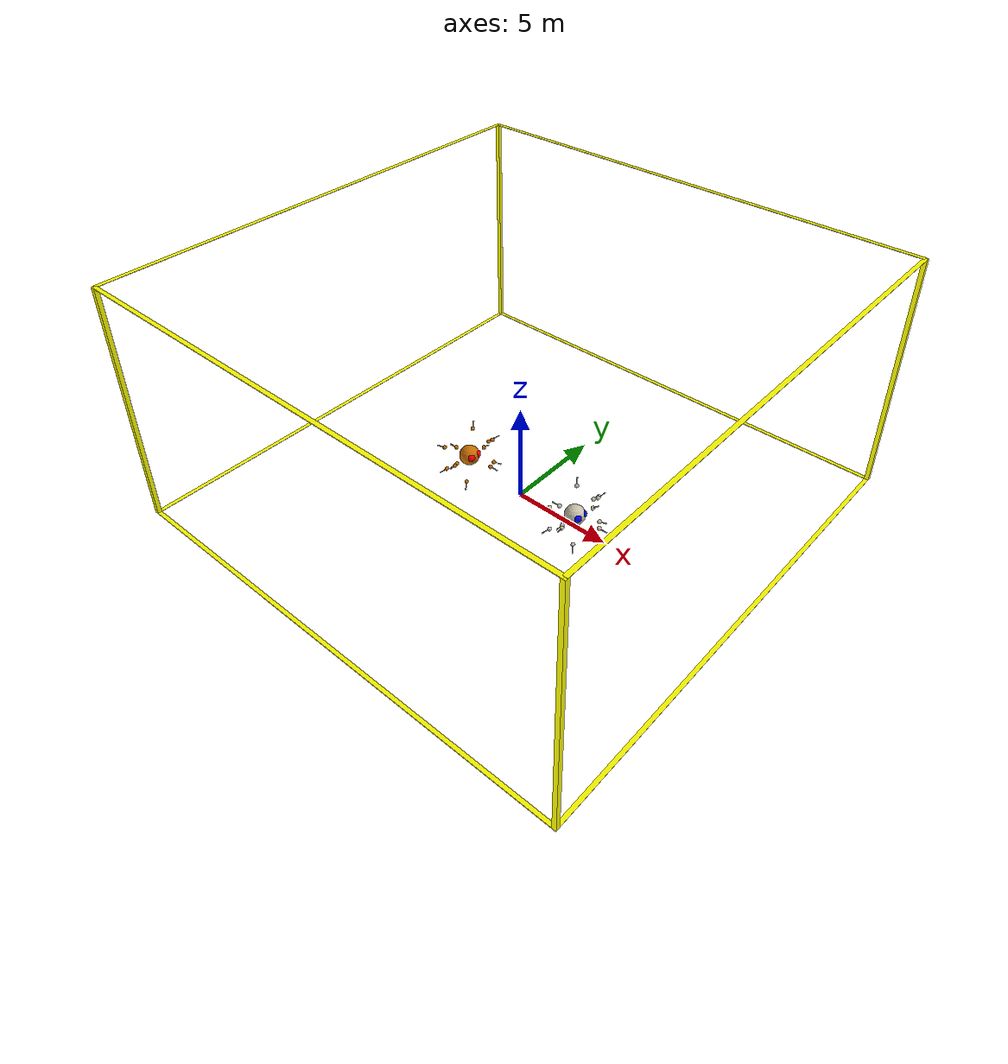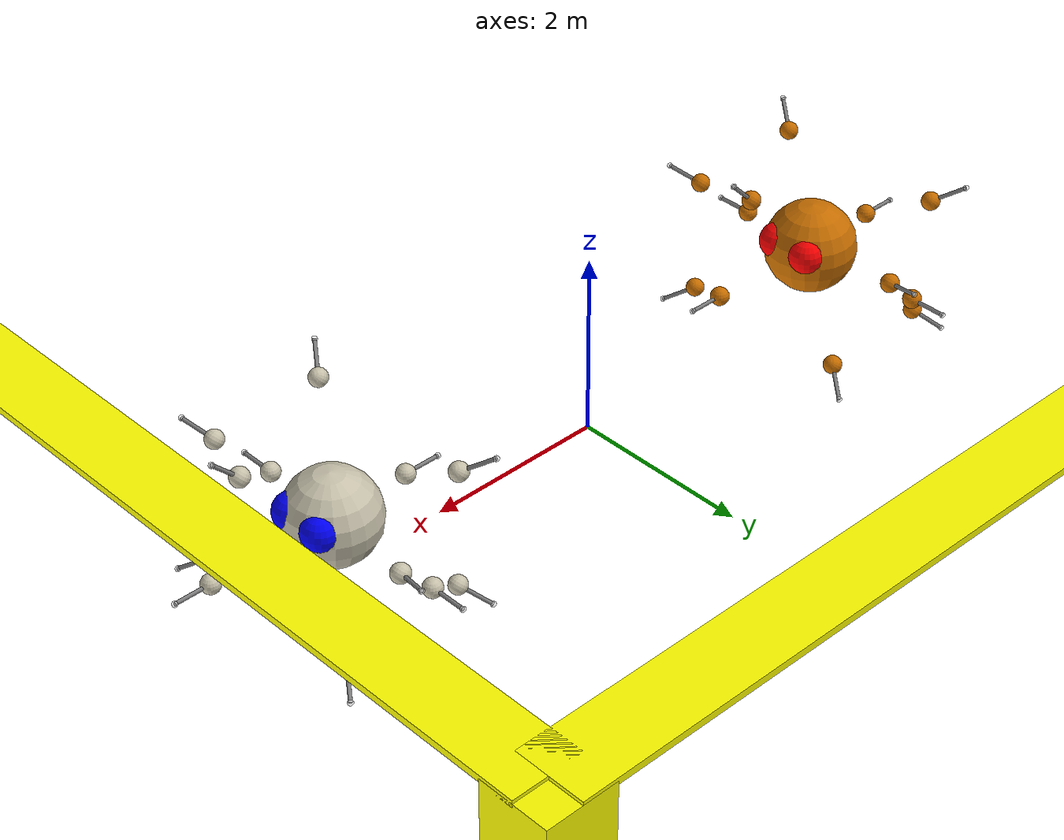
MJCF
<mujoco>
      <option timestep="0.001" gravity="0 0 -9.8" integrator="RK4" />

      <visual>
            <headlight ambient="0.4 0.3 0.1" diffuse="0.8 0.7 0.5" specular="0.3 0.3 0.3" />
            <rgba fog="0.3 0.22 0.05 1" />
            <quality shadowsize="4096" />
      </visual>

      <statistic extent="10" meansize="0.5" />

      <default>
            <geom friction="1.8 0.1 0.1" solref="0.01 1" solimp="0.9 0.95 0.001" />
            <joint damping="0.8" armature="0.5" />
            <motor gear="450" />
      </default>

      <asset>
            <texture name="grid_tex" type="2d" builtin="checker" width="512" height="512"
                  rgb1="0.1 0.1 0.2" rgb2="0.15 0.15 0.3" />

            <material name="grid_material"
                  texture="grid_tex"
                  texrepeat="10 10"
                  specular="0.2"
                  shininess="0.1"
                  rgba="0.1 0.06 0.04 0" />

            <material name="wall_material"
                  specular="0.5"
                  shininess="0.1"
                  rgba="0.18 0.09 0.06 0" />

            <material name="safety_wall_material" rgba="1 0 0 0" /> <!-- Invisible -->

            <material name="roof_material"
                  specular="0.3"
                  shininess="0.2"
                  rgba="0.2 0.2 0.3 0" />

            <texture name="robot1_tex" type="cube" builtin="flat" width="512" height="512"
                  mark="random" markrgb="1.0 0.2 0.2" />
            <texture name="robot2_tex" type="cube" builtin="flat" width="512" height="512"
                  mark="random" markrgb="0.2 0.2 1.0" />
            <material name="robot1_body_mat" texture="robot1_tex" specular="0.8" shininess="0.9"
                  rgba="1.0 0.55 0.0 1" />
            <material name="robot2_body_mat" texture="robot2_tex" specular="0.8" shininess="0.9"
                  rgba="1.0 0.97 0.86 1" />

            <material name="spike_mat" specular="1.0" shininess="1.0" rgba="0.5 0.5 0.5 1" />
            <material name="yellow_outline" rgba="1 1 0 1" specular="1" shininess="1" emission="1.0" />

            <!-- LED Eye Materials (emissive for glow effect) -->
            <material name="led_eye_red" rgba="1 0 0 1" emission="2.0" specular="0.3" shininess="0.5"/>
            <material name="led_eye_blue" rgba="0 0 1 1" emission="2.0" specular="0.3" shininess="0.5"/>
            <material name="led_eye_green" rgba="0 1 0 1" emission="2.0" specular="0.3" shininess="0.5"/>
            <material name="eye_pupil" rgba="0 0 0 1" emission="0.0" specular="0.1"/>
      </asset>

      <worldbody>
            <light name="main_light" pos="0 0 15" dir="0 0 -1" diffuse="0.9 0.9 1.0"
                  specular="0.5 0.5 0.8" />
            <geom name="floor" type="plane" size="50 50 0.1"
                  material="grid_material"
                  condim="3"
                  friction="1 0.005 0.005" />

            <!-- Thick Outer Arena Walls -->
            <geom name="wall_n" type="box" pos="0 15.0 6.0" size="12.5 2.5 6.0" material="wall_material" />
            <geom name="wall_s" type="box" pos="0 -15.0 6.0" size="12.5 2.5 6.0" material="wall_material" />
            <geom name="wall_e" type="box" pos="15.0 0 6.0" size="2.5 12.5 6.0" material="wall_material" />
            <geom name="wall_w" type="box" pos="-15.0 0 6.0" size="2.5 12.5 6.0" material="wall_material" />
            <geom name="roof" type="box" pos="0 0 12.1" size="17.6 17.6 0.1" material="roof_material" />

            <!-- Rounded Corner Walls -->
            <geom name="corner_ne" type="cylinder" fromto="12.5 12.5 0 12.5 12.5 12" size="2.5" material="wall_material" />
            <geom name="corner_nw" type="cylinder" fromto="-12.5 12.5 0 -12.5 12.5 12" size="2.5" material="wall_material" />
            <geom name="corner_se" type="cylinder" fromto="12.5 -12.5 0 12.5 -12.5 12" size="2.5" material="wall_material" />
            <geom name="corner_sw" type="cylinder" fromto="-12.5 -12.5 0 -12.5 -12.5 12" size="2.5" material="wall_material" />

            <!-- Yellow Arena Outline -->
            <geom name="outline_n_floor" type="box" pos="0 12.0 0.01" size="12.0 0.1 0.01" material="yellow_outline" contype="0" conaffinity="0" />
            <geom name="outline_s_floor" type="box" pos="0 -12.0 0.01" size="12.0 0.1 0.01" material="yellow_outline" contype="0" conaffinity="0" />
            <geom name="outline_e_floor" type="box" pos="12.0 0 0.01" size="0.1 12.0 0.01" material="yellow_outline" contype="0" conaffinity="0" />
            <geom name="outline_w_floor" type="box" pos="-12.0 0 0.01" size="0.1 12.0 0.01" material="yellow_outline" contype="0" conaffinity="0" />
            <!-- Ceiling -->
            <geom name="outline_n_ceil" type="box" pos="0 12.0 12.0" size="12.0 0.1 0.01" material="yellow_outline" contype="0" conaffinity="0" />
            <geom name="outline_s_ceil" type="box" pos="0 -12.0 12.0" size="12.0 0.1 0.01" material="yellow_outline" contype="0" conaffinity="0" />
            <geom name="outline_e_ceil" type="box" pos="12.0 0 12.0" size="0.1 12.0 0.01" material="yellow_outline" contype="0" conaffinity="0" />
            <geom name="outline_w_ceil" type="box" pos="-12.0 0 12.0" size="0.1 12.0 0.01" material="yellow_outline" contype="0" conaffinity="0" />
            <!-- Vertical Pillars -->
            <geom name="outline_ne_pillar" type="box" pos="12.0 12.0 6.0" size="0.1 0.1 6.0" material="yellow_outline" contype="0" conaffinity="0" />
            <geom name="outline_nw_pillar" type="box" pos="-12.0 12.0 6.0" size="0.1 0.1 6.0" material="yellow_outline" contype="0" conaffinity="0" />
            <geom name="outline_se_pillar" type="box" pos="12.0 -12.0 6.0" size="0.1 0.1 6.0" material="yellow_outline" contype="0" conaffinity="0" />
            <geom name="outline_sw_pillar" type="box" pos="-12.0 -12.0 6.0" size="0.1 0.1 6.0" material="yellow_outline" contype="0" conaffinity="0" />

            <!-- Robot 1 (Bright Red) -->
            <body name="robot1" pos="-3.3 0 0.7">
                  <freejoint name="r1_root" />
                  <geom name="r1_body" type="sphere" size="0.5"
                        material="robot1_body_mat"
                        mass="13" />
                  <site name="r1_center" pos="0 0 0" size="0.01" rgba="1 0 0 1"/>
                  <site name="r1_ray_fwd_site" pos="0 0 0" size="0.01" euler="0 0 0"/>
                  <site name="r1_ray_fwd_l_site" pos="0 0 0" size="0.01" euler="0 0 22.5"/>
                  <site name="r1_ray_fwd_r_site" pos="0 0 0" size="0.01" euler="0 0 -22.5"/>
                  <site name="r1_ray_45_l_site" pos="0 0 0" size="0.01" euler="0 0 45"/>
                  <site name="r1_ray_45_r_site" pos="0 0 0" size="0.01" euler="0 0 -45"/>
                  <site name="r1_ray_90_l_site" pos="0 0 0" size="0.01" euler="0 0 90"/>
                  <site name="r1_ray_90_r_site" pos="0 0 0" size="0.01" euler="0 0 -90"/>
                  <site name="r1_ray_back_site" pos="0 0 0" size="0.01" euler="0 0 180"/>
                  <site name="r1_ray_down_site" pos="0 0 0" size="0.01" euler="0 -90 0"/>
                  <site name="r1_ray_up_site" pos="0 0 0" size="0.01" euler="0 90 0"/>

                  <!-- Satellites R1 -->
                  <body name="r1_s1" pos="0 0 0">
                        <joint name="r1_s1y" type="hinge" axis="0 0 1" />
                        <joint name="r1_s1p" type="hinge" axis="0 1 0" />
                        <joint name="r1_s1r" type="hinge" axis="1 0 0" />
                        <geom name="r1_sat1_core" type="sphere" pos="1.4 0 0" size="0.1" material="robot1_body_mat" mass="3.5" />
                        <body name="r1_s1_lancer" pos="1.4 0 0">
                            <joint name="r1_s1_slide" type="slide" axis="1 0 0" range="0 0.5"/>
                            <geom name="r1_sat1_spike" type="cylinder" fromto="0 0 0 0.4 0 0" size="0.02" material="spike_mat" mass="0.5" />
                            <site name="r1_s1_site" pos="0.4 0 0" size="0.03" rgba="1 1 1 0.5" />
                        </body>
                  </body>
                  <body name="r1_s2" pos="0 0 0">
                        <joint name="r1_s2y" type="hinge" axis="0 0 1" />
                        <joint name="r1_s2p" type="hinge" axis="0 1 0" />
                        <joint name="r1_s2r" type="hinge" axis="1 0 0" />
                        <geom name="r1_sat2_core" type="sphere" pos="-0.9 0 0" size="0.1" material="robot1_body_mat" mass="3.5" />
                        <body name="r1_s2_lancer" pos="-0.9 0 0">
                            <joint name="r1_s2_slide" type="slide" axis="-1 0 0" range="0 0.5"/>
                            <geom name="r1_sat2_spike" type="cylinder" fromto="0 0 0 -0.4 0 0" size="0.02" material="spike_mat" mass="0.5" />
                            <site name="r1_s2_site" pos="-0.4 0 0" size="0.03" rgba="1 1 1 0.5" />
                        </body>
                  </body>
                  <body name="r1_s3" pos="0 0 0">
                        <joint name="r1_s3y" type="hinge" axis="0 0 1" />
                        <joint name="r1_s3p" type="hinge" axis="1 0 0" />
                        <joint name="r1_s3r" type="hinge" axis="0 1 0" />
                        <geom name="r1_sat3_core" type="sphere" pos="0 1.4 0" size="0.1" material="robot1_body_mat" mass="3.5" />
                        <body name="r1_s3_lancer" pos="0 1.4 0">
                            <joint name="r1_s3_slide" type="slide" axis="0 1 0" range="0 0.5"/>
                            <geom name="r1_sat3_spike" type="cylinder" fromto="0 0 0 0 0.4 0" size="0.02" material="spike_mat" mass="0.5" />
                            <site name="r1_s3_site" pos="0 0.4 0" size="0.03" rgba="1 1 1 0.5" />
                        </body>
                  </body>
                  <body name="r1_s4" pos="0 0 0">
                        <joint name="r1_s4y" type="hinge" axis="0 0 1" />
                        <joint name="r1_s4p" type="hinge" axis="1 0 0" />
                        <joint name="r1_s4r" type="hinge" axis="0 1 0" />
                        <geom name="r1_sat4_core" type="sphere" pos="0 -0.9 0" size="0.1" material="robot1_body_mat" mass="3.5" />
                        <body name="r1_s4_lancer" pos="0 -0.9 0">
                            <joint name="r1_s4_slide" type="slide" axis="0 -1 0" range="0 0.5"/>
                            <geom name="r1_sat4_spike" type="cylinder" fromto="0 0 0 0 -0.4 0" size="0.02" material="spike_mat" mass="0.5" />
                            <site name="r1_s4_site" pos="0 -0.4 0" size="0.03" rgba="1 1 1 0.5" />
                        </body>
                  </body>
                  <!-- New Satellites s5-s13 -->
                  <body name="r1_s5" pos="0 0 0" euler="0 -45 0">
                      <joint name="r1_s5y" type="hinge" axis="0 0 1"/><joint name="r1_s5p" type="hinge" axis="0 1 0"/><joint name="r1_s5r" type="hinge" axis="1 0 0"/>
                      <geom name="r1_sat5_core" type="sphere" pos="1.4 0 0" size="0.1" material="robot1_body_mat" mass="3.5"/>
                      <body name="r1_s5_lancer" pos="1.4 0 0"><joint name="r1_s5_slide" type="slide" axis="1 0 0" range="0 0.5"/><geom name="r1_sat5_spike" type="cylinder" fromto="0 0 0 0.4 0 0" size="0.02" material="spike_mat" mass="0.5"/><site name="r1_s5_site" pos="0.4 0 0" size="0.03" rgba="1 1 1 0.5"/></body>
                  </body>
                  <body name="r1_s6" pos="0 0 0" euler="0 -45 72">
                      <joint name="r1_s6y" type="hinge" axis="0 0 1"/><joint name="r1_s6p" type="hinge" axis="0 1 0"/><joint name="r1_s6r" type="hinge" axis="1 0 0"/>
                      <geom name="r1_sat6_core" type="sphere" pos="1.4 0 0" size="0.1" material="robot1_body_mat" mass="3.5"/>
                      <body name="r1_s6_lancer" pos="1.4 0 0"><joint name="r1_s6_slide" type="slide" axis="1 0 0" range="0 0.5"/><geom name="r1_sat6_spike" type="cylinder" fromto="0 0 0 0.4 0 0" size="0.02" material="spike_mat" mass="0.5"/><site name="r1_s6_site" pos="0.4 0 0" size="0.03" rgba="1 1 1 0.5"/></body>
                  </body>
                  <body name="r1_s7" pos="0 0 0" euler="0 -45 144">
                      <joint name="r1_s7y" type="hinge" axis="0 0 1"/><joint name="r1_s7p" type="hinge" axis="0 1 0"/><joint name="r1_s7r" type="hinge" axis="1 0 0"/>
                      <geom name="r1_sat7_core" type="sphere" pos="1.4 0 0" size="0.1" material="robot1_body_mat" mass="3.5"/>
                      <body name="r1_s7_lancer" pos="1.4 0 0"><joint name="r1_s7_slide" type="slide" axis="1 0 0" range="0 0.5"/><geom name="r1_sat7_spike" type="cylinder" fromto="0 0 0 0.4 0 0" size="0.02" material="spike_mat" mass="0.5"/><site name="r1_s7_site" pos="0.4 0 0" size="0.03" rgba="1 1 1 0.5"/></body>
                  </body>
                  <body name="r1_s8" pos="0 0 0" euler="0 -45 216">
                      <joint name="r1_s8y" type="hinge" axis="0 0 1"/><joint name="r1_s8p" type="hinge" axis="0 1 0"/><joint name="r1_s8r" type="hinge" axis="1 0 0"/>
                      <geom name="r1_sat8_core" type="sphere" pos="1.4 0 0" size="0.1" material="robot1_body_mat" mass="3.5"/>
                      <body name="r1_s8_lancer" pos="1.4 0 0"><joint name="r1_s8_slide" type="slide" axis="1 0 0" range="0 0.5"/><geom name="r1_sat8_spike" type="cylinder" fromto="0 0 0 0.4 0 0" size="0.02" material="spike_mat" mass="0.5"/><site name="r1_s8_site" pos="0.4 0 0" size="0.03" rgba="1 1 1 0.5"/></body>
                  </body>
                  <body name="r1_s9" pos="0 0 0" euler="0 -45 288">
                      <joint name="r1_s9y" type="hinge" axis="0 0 1"/><joint name="r1_s9p" type="hinge" axis="0 1 0"/><joint name="r1_s9r" type="hinge" axis="1 0 0"/>
                      <geom name="r1_sat9_core" type="sphere" pos="1.4 0 0" size="0.1" material="robot1_body_mat" mass="3.5"/>
                      <body name="r1_s9_lancer" pos="1.4 0 0"><joint name="r1_s9_slide" type="slide" axis="1 0 0" range="0 0.5"/><geom name="r1_sat9_spike" type="cylinder" fromto="0 0 0 0.4 0 0" size="0.02" material="spike_mat" mass="0.5"/><site name="r1_s9_site" pos="0.4 0 0" size="0.03" rgba="1 1 1 0.5"/></body>
                  </body>
                  <body name="r1_s10" pos="0 0 0" euler="0 45 45">
                      <joint name="r1_s10y" type="hinge" axis="0 0 1"/><joint name="r1_s10p" type="hinge" axis="0 1 0"/><joint name="r1_s10r" type="hinge" axis="1 0 0"/>
                      <geom name="r1_sat10_core" type="sphere" pos="1.4 0 0" size="0.1" material="robot1_body_mat" mass="3.5"/>
                      <body name="r1_s10_lancer" pos="1.4 0 0"><joint name="r1_s10_slide" type="slide" axis="1 0 0" range="0 0.5"/><geom name="r1_sat10_spike" type="cylinder" fromto="0 0 0 0.4 0 0" size="0.02" material="spike_mat" mass="0.5"/><site name="r1_s10_site" pos="0.4 0 0" size="0.03" rgba="1 1 1 0.5"/></body>
                  </body>
                  <body name="r1_s11" pos="0 0 0" euler="0 45 135">
                      <joint name="r1_s11y" type="hinge" axis="0 0 1"/><joint name="r1_s11p" type="hinge" axis="0 1 0"/><joint name="r1_s11r" type="hinge" axis="1 0 0"/>
                      <geom name="r1_sat11_core" type="sphere" pos="1.4 0 0" size="0.1" material="robot1_body_mat" mass="3.5"/>
                      <body name="r1_s11_lancer" pos="1.4 0 0"><joint name="r1_s11_slide" type="slide" axis="1 0 0" range="0 0.5"/><geom name="r1_sat11_spike" type="cylinder" fromto="0 0 0 0.4 0 0" size="0.02" material="spike_mat" mass="0.5"/><site name="r1_s11_site" pos="0.4 0 0" size="0.03" rgba="1 1 1 0.5"/></body>
                  </body>
                  <body name="r1_s12" pos="0 0 0" euler="0 45 225">
                      <joint name="r1_s12y" type="hinge" axis="0 0 1"/><joint name="r1_s12p" type="hinge" axis="0 1 0"/><joint name="r1_s12r" type="hinge" axis="1 0 0"/>
                      <geom name="r1_sat12_core" type="sphere" pos="1.4 0 0" size="0.1" material="robot1_body_mat" mass="3.5"/>
                      <body name="r1_s12_lancer" pos="1.4 0 0"><joint name="r1_s12_slide" type="slide" axis="1 0 0" range="0 0.5"/><geom name="r1_sat12_spike" type="cylinder" fromto="0 0 0 0.4 0 0" size="0.02" material="spike_mat" mass="0.5"/><site name="r1_s12_site" pos="0.4 0 0" size="0.03" rgba="1 1 1 0.5"/></body>
                  </body>
                  <body name="r1_s13" pos="0 0 0" euler="0 45 315">
                      <joint name="r1_s13y" type="hinge" axis="0 0 1"/><joint name="r1_s13p" type="hinge" axis="0 1 0"/><joint name="r1_s13r" type="hinge" axis="1 0 0"/>
                      <geom name="r1_sat13_core" type="sphere" pos="1.4 0 0" size="0.1" material="robot1_body_mat" mass="3.5"/>
                      <body name="r1_s13_lancer" pos="1.4 0 0"><joint name="r1_s13_slide" type="slide" axis="1 0 0" range="0 0.5"/><geom name="r1_sat13_spike" type="cylinder" fromto="0 0 0 0.4 0 0" size="0.02" material="spike_mat" mass="0.5"/><site name="r1_s13_site" pos="0.4 0 0" size="0.03" rgba="1 1 1 0.5"/></body>
                  </body>

                  <!-- LED Eye Assemblies for Robot 1 -->
                  <!-- Left Eye Assembly -->
                  <body name="r1_eye_left_base" pos="0.3 0.2 0.1">
                        <joint name="r1_eye_yaw_left" type="hinge" axis="0 0 1" range="-45 45"/>
                        <joint name="r1_eye_pitch_left" type="hinge" axis="0 1 0" range="-30 30"/>
                        <geom name="r1_eye_geom_left" type="sphere" size="0.2" material="led_eye_red" contype="0" conaffinity="0"/>
                        <geom name="r1_pupil_left" type="sphere" pos="0.08 0 0.08" size="0.06" material="eye_pupil" contype="0" conaffinity="0"/>
                  </body>

                  <!-- Right Eye Assembly (mirrored) -->
                  <body name="r1_eye_right_base" pos="0.3 -0.2 0.1">
                        <joint name="r1_eye_yaw_right" type="hinge" axis="0 0 1" range="-45 45"/>
                        <joint name="r1_eye_pitch_right" type="hinge" axis="0 1 0" range="-30 30"/>
                        <geom name="r1_eye_geom_right" type="sphere" size="0.2" material="led_eye_red" contype="0" conaffinity="0"/>
                        <geom name="r1_pupil_right" type="sphere" pos="0.08 0 0.08" size="0.06" material="eye_pupil" contype="0" conaffinity="0"/>
                  </body>
            </body>

            <!-- Robot 2 (Bright Blue) -->
            <body name="robot2" pos="3.3 0 0.7">
                  <freejoint name="r2_root" />
                  <geom name="r2_body" type="sphere" size="0.5" material="robot2_body_mat" mass="13" />
                  <site name="r2_center" pos="0 0 0" size="0.01" rgba="0 0 1 1"/>
                  <site name="r2_ray_fwd_site" pos="0 0 0" size="0.01" euler="0 0 180"/>
                  <site name="r2_ray_fwd_l_site" pos="0 0 0" size="0.01" euler="0 0 157.5"/>
                  <site name="r2_ray_fwd_r_site" pos="0 0 0" size="0.01" euler="0 0 202.5"/>
                  <site name="r2_ray_45_l_site" pos="0 0 0" size="0.01" euler="0 0 135"/>
                  <site name="r2_ray_45_r_site" pos="0 0 0" size="0.01" euler="0 0 225"/>
                  <site name="r2_ray_90_l_site" pos="0 0 0" size="0.01" euler="0 0 90"/>
                  <site name="r2_ray_90_r_site" pos="0 0 0" size="0.01" euler="0 0 -90"/>
                  <site name="r2_ray_back_site" pos="0 0 0" size="0.01" euler="0 0 0"/>
                  <site name="r2_ray_down_site" pos="0 0 0" size="0.01" euler="0 -90 0"/>
                  <site name="r2_ray_up_site" pos="0 0 0" size="0.01" euler="0 90 0"/>

                  <!-- Satellites R2 -->
                  <body name="r2_s1" pos="0 0 0">
                        <joint name="r2_s1y" type="hinge" axis="0 0 1" />
                        <joint name="r2_s1p" type="hinge" axis="0 1 0" />
                        <joint name="r2_s1r" type="hinge" axis="1 0 0" />
                        <geom name="r2_sat1_core" type="sphere" pos="1.4 0 0" size="0.1" material="robot2_body_mat" mass="3.5" />
                        <body name="r2_s1_lancer" pos="1.4 0 0">
                            <joint name="r2_s1_slide" type="slide" axis="1 0 0" range="0 0.5"/>
                            <geom name="r2_sat1_spike" type="cylinder" fromto="0 0 0 0.4 0 0" size="0.02" material="spike_mat" mass="0.5" />
                            <site name="r2_s1_site" pos="0.4 0 0" size="0.03" rgba="1 1 1 0.5" />
                        </body>
                  </body>
                  <body name="r2_s2" pos="0 0 0">
                        <joint name="r2_s2y" type="hinge" axis="0 0 1" />
                        <joint name="r2_s2p" type="hinge" axis="0 1 0" />
                        <joint name="r2_s2r" type="hinge" axis="1 0 0" />
                        <geom name="r2_sat2_core" type="sphere" pos="-0.9 0 0" size="0.1" material="robot2_body_mat" mass="3.5" />
                        <body name="r2_s2_lancer" pos="-0.9 0 0">
                            <joint name="r2_s2_slide" type="slide" axis="-1 0 0" range="0 0.5"/>
                            <geom name="r2_sat2_spike" type="cylinder" fromto="0 0 0 -0.4 0 0" size="0.02" material="spike_mat" mass="0.5" />
                            <site name="r2_s2_site" pos="-0.4 0 0" size="0.03" rgba="1 1 1 0.5" />
                        </body>
                  </body>
                  <body name="r2_s3" pos="0 0 0">
                        <joint name="r2_s3y" type="hinge" axis="0 0 1" />
                        <joint name="r2_s3p" type="hinge" axis="1 0 0" />
                        <joint name="r2_s3r" type="hinge" axis="0 1 0" />
                        <geom name="r2_sat3_core" type="sphere" pos="0 1.4 0" size="0.1" material="robot2_body_mat" mass="3.5" />
                        <body name="r2_s3_lancer" pos="0 1.4 0">
                            <joint name="r2_s3_slide" type="slide" axis="0 1 0" range="0 0.5"/>
                            <geom name="r2_sat3_spike" type="cylinder" fromto="0 0 0 0 0.4 0" size="0.02" material="spike_mat" mass="0.5" />
                            <site name="r2_s3_site" pos="0 0.4 0" size="0.03" rgba="1 1 1 0.5" />
                        </body>
                  </body>
                  <body name="r2_s4" pos="0 0 0">
                        <joint name="r2_s4y" type="hinge" axis="0 0 1" />
                        <joint name="r2_s4p" type="hinge" axis="1 0 0" />
                        <joint name="r2_s4r" type="hinge" axis="0 1 0" />
                        <geom name="r2_sat4_core" type="sphere" pos="0 -0.9 0" size="0.1" material="robot2_body_mat" mass="3.5" />
                        <body name="r2_s4_lancer" pos="0 -0.9 0">
                            <joint name="r2_s4_slide" type="slide" axis="0 -1 0" range="0 0.5"/>
                            <geom name="r2_sat4_spike" type="cylinder" fromto="0 0 0 0 -0.4 0" size="0.02" material="spike_mat" mass="0.5" />
                            <site name="r2_s4_site" pos="0 -0.4 0" size="0.03" rgba="1 1 1 0.5" />
                        </body>
                  </body>
                  <!-- New Satellites s5-s13 for R2 -->
                  <body name="r2_s5" pos="0 0 0" euler="0 -45 0">
                      <joint name="r2_s5y" type="hinge" axis="0 0 1"/><joint name="r2_s5p" type="hinge" axis="0 1 0"/><joint name="r2_s5r" type="hinge" axis="1 0 0"/>
                      <geom name="r2_sat5_core" type="sphere" pos="1.4 0 0" size="0.1" material="robot2_body_mat" mass="3.5"/>
                      <body name="r2_s5_lancer" pos="1.4 0 0"><joint name="r2_s5_slide" type="slide" axis="1 0 0" range="0 0.5"/><geom name="r2_sat5_spike" type="cylinder" fromto="0 0 0 0.4 0 0" size="0.02" material="spike_mat" mass="0.5"/><site name="r2_s5_site" pos="0.4 0 0" size="0.03" rgba="1 1 1 0.5"/></body>
                  </body>
                  <body name="r2_s6" pos="0 0 0" euler="0 -45 72">
                      <joint name="r2_s6y" type="hinge" axis="0 0 1"/><joint name="r2_s6p" type="hinge" axis="0 1 0"/><joint name="r2_s6r" type="hinge" axis="1 0 0"/>
                      <geom name="r2_sat6_core" type="sphere" pos="1.4 0 0" size="0.1" material="robot2_body_mat" mass="3.5"/>
                      <body name="r2_s6_lancer" pos="1.4 0 0"><joint name="r2_s6_slide" type="slide" axis="1 0 0" range="0 0.5"/><geom name="r2_sat6_spike" type="cylinder" fromto="0 0 0 0.4 0 0" size="0.02" material="spike_mat" mass="0.5"/><site name="r2_s6_site" pos="0.4 0 0" size="0.03" rgba="1 1 1 0.5"/></body>
                  </body>
                  <body name="r2_s7" pos="0 0 0" euler="0 -45 144">
                      <joint name="r2_s7y" type="hinge" axis="0 0 1"/><joint name="r2_s7p" type="hinge" axis="0 1 0"/><joint name="r2_s7r" type="hinge" axis="1 0 0"/>
                      <geom name="r2_sat7_core" type="sphere" pos="1.4 0 0" size="0.1" material="robot2_body_mat" mass="3.5"/>
                      <body name="r2_s7_lancer" pos="1.4 0 0"><joint name="r2_s7_slide" type="slide" axis="1 0 0" range="0 0.5"/><geom name="r2_sat7_spike" type="cylinder" fromto="0 0 0 0.4 0 0" size="0.02" material="spike_mat" mass="0.5"/><site name="r2_s7_site" pos="0.4 0 0" size="0.03" rgba="1 1 1 0.5"/></body>
                  </body>
                  <body name="r2_s8" pos="0 0 0" euler="0 -45 216">
                      <joint name="r2_s8y" type="hinge" axis="0 0 1"/><joint name="r2_s8p" type="hinge" axis="0 1 0"/><joint name="r2_s8r" type="hinge" axis="1 0 0"/>
                      <geom name="r2_sat8_core" type="sphere" pos="1.4 0 0" size="0.1" material="robot2_body_mat" mass="3.5"/>
                      <body name="r2_s8_lancer" pos="1.4 0 0"><joint name="r2_s8_slide" type="slide" axis="1 0 0" range="0 0.5"/><geom name="r2_sat8_spike" type="cylinder" fromto="0 0 0 0.4 0 0" size="0.02" material="spike_mat" mass="0.5"/><site name="r2_s8_site" pos="0.4 0 0" size="0.03" rgba="1 1 1 0.5"/></body>
                  </body>
                  <body name="r2_s9" pos="0 0 0" euler="0 -45 288">
                      <joint name="r2_s9y" type="hinge" axis="0 0 1"/><joint name="r2_s9p" type="hinge" axis="0 1 0"/><joint name="r2_s9r" type="hinge" axis="1 0 0"/>
                      <geom name="r2_sat9_core" type="sphere" pos="1.4 0 0" size="0.1" material="robot2_body_mat" mass="3.5"/>
                      <body name="r2_s9_lancer" pos="1.4 0 0"><joint name="r2_s9_slide" type="slide" axis="1 0 0" range="0 0.5"/><geom name="r2_sat9_spike" type="cylinder" fromto="0 0 0 0.4 0 0" size="0.02" material="spike_mat" mass="0.5"/><site name="r2_s9_site" pos="0.4 0 0" size="0.03" rgba="1 1 1 0.5"/></body>
                  </body>
                  <body name="r2_s10" pos="0 0 0" euler="0 45 45">
                      <joint name="r2_s10y" type="hinge" axis="0 0 1"/><joint name="r2_s10p" type="hinge" axis="0 1 0"/><joint name="r2_s10r" type="hinge" axis="1 0 0"/>
                      <geom name="r2_sat10_core" type="sphere" pos="1.4 0 0" size="0.1" material="robot2_body_mat" mass="3.5"/>
                      <body name="r2_s10_lancer" pos="1.4 0 0"><joint name="r2_s10_slide" type="slide" axis="1 0 0" range="0 0.5"/><geom name="r2_sat10_spike" type="cylinder" fromto="0 0 0 0.4 0 0" size="0.02" material="spike_mat" mass="0.5"/><site name="r2_s10_site" pos="0.4 0 0" size="0.03" rgba="1 1 1 0.5"/></body>
                  </body>
                  <body name="r2_s11" pos="0 0 0" euler="0 45 135">
                      <joint name="r2_s11y" type="hinge" axis="0 0 1"/><joint name="r2_s11p" type="hinge" axis="0 1 0"/><joint name="r2_s11r" type="hinge" axis="1 0 0"/>
                      <geom name="r2_sat11_core" type="sphere" pos="1.4 0 0" size="0.1" material="robot2_body_mat" mass="3.5"/>
                      <body name="r2_s11_lancer" pos="1.4 0 0"><joint name="r2_s11_slide" type="slide" axis="1 0 0" range="0 0.5"/><geom name="r2_sat11_spike" type="cylinder" fromto="0 0 0 0.4 0 0" size="0.02" material="spike_mat" mass="0.5"/><site name="r2_s11_site" pos="0.4 0 0" size="0.03" rgba="1 1 1 0.5"/></body>
                  </body>
                  <body name="r2_s12" pos="0 0 0" euler="0 45 225">
                      <joint name="r2_s12y" type="hinge" axis="0 0 1"/><joint name="r2_s12p" type="hinge" axis="0 1 0"/><joint name="r2_s12r" type="hinge" axis="1 0 0"/>
                      <geom name="r2_sat12_core" type="sphere" pos="1.4 0 0" size="0.1" material="robot2_body_mat" mass="3.5"/>
                      <body name="r2_s12_lancer" pos="1.4 0 0"><joint name="r2_s12_slide" type="slide" axis="1 0 0" range="0 0.5"/><geom name="r2_sat12_spike" type="cylinder" fromto="0 0 0 0.4 0 0" size="0.02" material="spike_mat" mass="0.5"/><site name="r2_s12_site" pos="0.4 0 0" size="0.03" rgba="1 1 1 0.5"/></body>
                  </body>
                  <body name="r2_s13" pos="0 0 0" euler="0 45 315">
                      <joint name="r2_s13y" type="hinge" axis="0 0 1"/><joint name="r2_s13p" type="hinge" axis="0 1 0"/><joint name="r2_s13r" type="hinge" axis="1 0 0"/>
                      <geom name="r2_sat13_core" type="sphere" pos="1.4 0 0" size="0.1" material="robot2_body_mat" mass="3.5"/>
                      <body name="r2_s13_lancer" pos="1.4 0 0"><joint name="r2_s13_slide" type="slide" axis="1 0 0" range="0 0.5"/><geom name="r2_sat13_spike" type="cylinder" fromto="0 0 0 0.4 0 0" size="0.02" material="spike_mat" mass="0.5"/><site name="r2_s13_site" pos="0.4 0 0" size="0.03" rgba="1 1 1 0.5"/></body>
                  </body>

                  <!-- LED Eye Assemblies for Robot 2 -->
                  <!-- Left Eye Assembly -->
                  <body name="r2_eye_left_base" pos="0.3 0.2 0.1">
                        <joint name="r2_eye_yaw_left" type="hinge" axis="0 0 1" range="-45 45"/>
                        <joint name="r2_eye_pitch_left" type="hinge" axis="0 1 0" range="-30 30"/>
                        <geom name="r2_eye_geom_left" type="sphere" size="0.2" material="led_eye_blue" contype="0" conaffinity="0"/>
                        <geom name="r2_pupil_left" type="sphere" pos="0.08 0 0.08" size="0.06" material="eye_pupil" contype="0" conaffinity="0"/>
                  </body>

                  <!-- Right Eye Assembly (mirrored) -->
                  <body name="r2_eye_right_base" pos="0.3 -0.2 0.1">
                        <joint name="r2_eye_yaw_right" type="hinge" axis="0 0 1" range="-45 45"/>
                        <joint name="r2_eye_pitch_right" type="hinge" axis="0 1 0" range="-30 30"/>
                        <geom name="r2_eye_geom_right" type="sphere" size="0.2" material="led_eye_blue" contype="0" conaffinity="0"/>
                        <geom name="r2_pupil_right" type="sphere" pos="0.08 0 0.08" size="0.06" material="eye_pupil" contype="0" conaffinity="0"/>
                  </body>
            </body>
      </worldbody>

      <actuator>
            <!-- R1 Actuators (16) -->
            <motor name="r1m1y" joint="r1_s1y" /> <motor name="r1m1p" joint="r1_s1p" /> <motor name="r1m1r" joint="r1_s1r" /> <motor name="r1m1s" joint="r1_s1_slide" />
            <motor name="r1m2y" joint="r1_s2y" /> <motor name="r1m2p" joint="r1_s2p" /> <motor name="r1m2r" joint="r1_s2r" /> <motor name="r1m2s" joint="r1_s2_slide" />
            <motor name="r1m3y" joint="r1_s3y" /> <motor name="r1m3p" joint="r1_s3p" /> <motor name="r1m3r" joint="r1_s3r" /> <motor name="r1m3s" joint="r1_s3_slide" />
            <motor name="r1m4y" joint="r1_s4y" /> <motor name="r1m4p" joint="r1_s4p" /> <motor name="r1m4r" joint="r1_s4r" /> <motor name="r1m4s" joint="r1_s4_slide" />
            <motor name="r1m5y" joint="r1_s5y" /> <motor name="r1m5p" joint="r1_s5p" /> <motor name="r1m5r" joint="r1_s5r" /> <motor name="r1m5s" joint="r1_s5_slide" />
            <motor name="r1m6y" joint="r1_s6y" /> <motor name="r1m6p" joint="r1_s6p" /> <motor name="r1m6r" joint="r1_s6r" /> <motor name="r1m6s" joint="r1_s6_slide" />
            <motor name="r1m7y" joint="r1_s7y" /> <motor name="r1m7p" joint="r1_s7p" /> <motor name="r1m7r" joint="r1_s7r" /> <motor name="r1m7s" joint="r1_s7_slide" />
            <motor name="r1m8y" joint="r1_s8y" /> <motor name="r1m8p" joint="r1_s8p" /> <motor name="r1m8r" joint="r1_s8r" /> <motor name="r1m8s" joint="r1_s8_slide" />
            <motor name="r1m9y" joint="r1_s9y" /> <motor name="r1m9p" joint="r1_s9p" /> <motor name="r1m9r" joint="r1_s9r" /> <motor name="r1m9s" joint="r1_s9_slide" />
            <motor name="r1m10y" joint="r1_s10y" /> <motor name="r1m10p" joint="r1_s10p" /> <motor name="r1m10r" joint="r1_s10r" /> <motor name="r1m10s" joint="r1_s10_slide" />
            <motor name="r1m11y" joint="r1_s11y" /> <motor name="r1m11p" joint="r1_s11p" /> <motor name="r1m11r" joint="r1_s11r" /> <motor name="r1m11s" joint="r1_s11_slide" />
            <motor name="r1m12y" joint="r1_s12y" /> <motor name="r1m12p" joint="r1_s12p" /> <motor name="r1m12r" joint="r1_s12r" /> <motor name="r1m12s" joint="r1_s12_slide" />
            <motor name="r1m13y" joint="r1_s13y" /> <motor name="r1m13p" joint="r1_s13p" /> <motor name="r1m13r" joint="r1_s13r" /> <motor name="r1m13s" joint="r1_s13_slide" />
            <!-- R2 Actuators (16) -->
            <motor name="r2m1y" joint="r2_s1y" /> <motor name="r2m1p" joint="r2_s1p" /> <motor name="r2m1r" joint="r2_s1r" /> <motor name="r2m1s" joint="r2_s1_slide" />
            <motor name="r2m2y" joint="r2_s2y" /> <motor name="r2m2p" joint="r2_s2p" /> <motor name="r2m2r" joint="r2_s2r" /> <motor name="r2m2s" joint="r2_s2_slide" />
            <motor name="r2m3y" joint="r2_s3y" /> <motor name="r2m3p" joint="r2_s3p" /> <motor name="r2m3r" joint="r2_s3r" /> <motor name="r2m3s" joint="r2_s3_slide" />
            <motor name="r2m4y" joint="r2_s4y" /> <motor name="r2m4p" joint="r2_s4p" /> <motor name="r2m4r" joint="r2_s4r" /> <motor name="r2m4s" joint="r2_s4_slide" />
            <motor name="r2m5y" joint="r2_s5y" /> <motor name="r2m5p" joint="r2_s5p" /> <motor name="r2m5r" joint="r2_s5r" /> <motor name="r2m5s" joint="r2_s5_slide" />
            <motor name="r2m6y" joint="r2_s6y" /> <motor name="r2m6p" joint="r2_s6p" /> <motor name="r2m6r" joint="r2_s6r" /> <motor name="r2m6s" joint="r2_s6_slide" />
            <motor name="r2m7y" joint="r2_s7y" /> <motor name="r2m7p" joint="r2_s7p" /> <motor name="r2m7r" joint="r2_s7r" /> <motor name="r2m7s" joint="r2_s7_slide" />
            <motor name="r2m8y" joint="r2_s8y" /> <motor name="r2m8p" joint="r2_s8p" /> <motor name="r2m8r" joint="r2_s8r" /> <motor name="r2m8s" joint="r2_s8_slide" />
            <motor name="r2m9y" joint="r2_s9y" /> <motor name="r2m9p" joint="r2_s9p" /> <motor name="r2m9r" joint="r2_s9r" /> <motor name="r2m9s" joint="r2_s9_slide" />
            <motor name="r2m10y" joint="r2_s10y" /> <motor name="r2m10p" joint="r2_s10p" /> <motor name="r2m10r" joint="r2_s10r" /> <motor name="r2m10s" joint="r2_s10_slide" />
            <motor name="r2m11y" joint="r2_s11y" /> <motor name="r2m11p" joint="r2_s11p" /> <motor name="r2m11r" joint="r2_s11r" /> <motor name="r2m11s" joint="r2_s11_slide" />
            <motor name="r2m12y" joint="r2_s12y" /> <motor name="r2m12p" joint="r2_s12p" /> <motor name="r2m12r" joint="r2_s12r" /> <motor name="r2m12s" joint="r2_s12_slide" />
            <motor name="r2m13y" joint="r2_s13y" /> <motor name="r2m13p" joint="r2_s13p" /> <motor name="r2m13r" joint="r2_s13r" /> <motor name="r2m13s" joint="r2_s13_slide" />

            <!-- Eye control actuators (separate from RL control, indices 52+) -->
            <!-- Robot 1 Eye Actuators -->
            <position name="r1_eye_yaw_left_act" joint="r1_eye_yaw_left" gear="60" ctrllimited="true" ctrlrange="-45 45"/>
            <position name="r1_eye_pitch_left_act" joint="r1_eye_pitch_left" gear="60" ctrllimited="true" ctrlrange="-30 30"/>
            <position name="r1_eye_yaw_right_act" joint="r1_eye_yaw_right" gear="60" ctrllimited="true" ctrlrange="-45 45"/>
            <position name="r1_eye_pitch_right_act" joint="r1_eye_pitch_right" gear="60" ctrllimited="true" ctrlrange="-30 30"/>

            <!-- Robot 2 Eye Actuators -->
            <position name="r2_eye_yaw_left_act" joint="r2_eye_yaw_left" gear="60" ctrllimited="true" ctrlrange="-45 45"/>
            <position name="r2_eye_pitch_left_act" joint="r2_eye_pitch_left" gear="60" ctrllimited="true" ctrlrange="-30 30"/>
            <position name="r2_eye_yaw_right_act" joint="r2_eye_yaw_right" gear="60" ctrllimited="true" ctrlrange="-45 45"/>
            <position name="r2_eye_pitch_right_act" joint="r2_eye_pitch_right" gear="60" ctrllimited="true" ctrlrange="-30 30"/>
      </actuator>

      <sensor>
        <!-- Robot 1 Sensors -->
        <jointvel name="r1_jvel_s1y" joint="r1_s1y"/> <jointvel name="r1_jvel_s1p" joint="r1_s1p"/> <jointvel name="r1_jvel_s1r" joint="r1_s1r"/> <jointvel name="r1_jvel_s1s" joint="r1_s1_slide"/>
        <jointvel name="r1_jvel_s2y" joint="r1_s2y"/> <jointvel name="r1_jvel_s2p" joint="r1_s2p"/> <jointvel name="r1_jvel_s2r" joint="r1_s2r"/> <jointvel name="r1_jvel_s2s" joint="r1_s2_slide"/>
        <jointvel name="r1_jvel_s3y" joint="r1_s3y"/> <jointvel name="r1_jvel_s3p" joint="r1_s3p"/> <jointvel name="r1_jvel_s3r" joint="r1_s3r"/> <jointvel name="r1_jvel_s3s" joint="r1_s3_slide"/>
        <jointvel name="r1_jvel_s4y" joint="r1_s4y"/> <jointvel name="r1_jvel_s4p" joint="r1_s4p"/> <jointvel name="r1_jvel_s4r" joint="r1_s4r"/> <jointvel name="r1_jvel_s4s" joint="r1_s4_slide"/>
        <jointvel name="r1_jvel_s5y" joint="r1_s5y"/> <jointvel name="r1_jvel_s5p" joint="r1_s5p"/> <jointvel name="r1_jvel_s5r" joint="r1_s5r"/> <jointvel name="r1_jvel_s5s" joint="r1_s5_slide"/>
        <jointvel name="r1_jvel_s6y" joint="r1_s6y"/> <jointvel name="r1_jvel_s6p" joint="r1_s6p"/> <jointvel name="r1_jvel_s6r" joint="r1_s6r"/> <jointvel name="r1_jvel_s6s" joint="r1_s6_slide"/>
        <jointvel name="r1_jvel_s7y" joint="r1_s7y"/> <jointvel name="r1_jvel_s7p" joint="r1_s7p"/> <jointvel name="r1_jvel_s7r" joint="r1_s7r"/> <jointvel name="r1_jvel_s7s" joint="r1_s7_slide"/>
        <jointvel name="r1_jvel_s8y" joint="r1_s8y"/> <jointvel name="r1_jvel_s8p" joint="r1_s8p"/> <jointvel name="r1_jvel_s8r" joint="r1_s8r"/> <jointvel name="r1_jvel_s8s" joint="r1_s8_slide"/>
        <jointvel name="r1_jvel_s9y" joint="r1_s9y"/> <jointvel name="r1_jvel_s9p" joint="r1_s9p"/> <jointvel name="r1_jvel_s9r" joint="r1_s9r"/> <jointvel name="r1_jvel_s9s" joint="r1_s9_slide"/>
        <jointvel name="r1_jvel_s10y" joint="r1_s10y"/> <jointvel name="r1_jvel_s10p" joint="r1_s10p"/> <jointvel name="r1_jvel_s10r" joint="r1_s10r"/> <jointvel name="r1_jvel_s10s" joint="r1_s10_slide"/>
        <jointvel name="r1_jvel_s11y" joint="r1_s11y"/> <jointvel name="r1_jvel_s11p" joint="r1_s11p"/> <jointvel name="r1_jvel_s11r" joint="r1_s11r"/> <jointvel name="r1_jvel_s11s" joint="r1_s11_slide"/>
        <jointvel name="r1_jvel_s12y" joint="r1_s12y"/> <jointvel name="r1_jvel_s12p" joint="r1_s12p"/> <jointvel name="r1_jvel_s12r" joint="r1_s12r"/> <jointvel name="r1_jvel_s12s" joint="r1_s12_slide"/>
        <jointvel name="r1_jvel_s13y" joint="r1_s13y"/> <jointvel name="r1_jvel_s13p" joint="r1_s13p"/> <jointvel name="r1_jvel_s13r" joint="r1_s13r"/> <jointvel name="r1_jvel_s13s" joint="r1_s13_slide"/>
        <actuatorfrc name="r1_afrc_s1y" actuator="r1m1y"/> <actuatorfrc name="r1_afrc_s1p" actuator="r1m1p"/> <actuatorfrc name="r1_afrc_s1r" actuator="r1m1r"/> <actuatorfrc name="r1_afrc_s1s" actuator="r1m1s"/>
        <actuatorfrc name="r1_afrc_s2y" actuator="r1m2y"/> <actuatorfrc name="r1_afrc_s2p" actuator="r1m2p"/> <actuatorfrc name="r1_afrc_s2r" actuator="r1m2r"/> <actuatorfrc name="r1_afrc_s2s" actuator="r1m2s"/>
        <actuatorfrc name="r1_afrc_s3y" actuator="r1m3y"/> <actuatorfrc name="r1_afrc_s3p" actuator="r1m3p"/> <actuatorfrc name="r1_afrc_s3r" actuator="r1m3r"/> <actuatorfrc name="r1_afrc_s3s" actuator="r1m3s"/>
        <actuatorfrc name="r1_afrc_s4y" actuator="r1m4y"/> <actuatorfrc name="r1_afrc_s4p" actuator="r1m4p"/> <actuatorfrc name="r1_afrc_s4r" actuator="r1m4r"/> <actuatorfrc name="r1_afrc_s4s" actuator="r1m4s"/>
        <actuatorfrc name="r1_afrc_s5y" actuator="r1m5y"/> <actuatorfrc name="r1_afrc_s5p" actuator="r1m5p"/> <actuatorfrc name="r1_afrc_s5r" actuator="r1m5r"/> <actuatorfrc name="r1_afrc_s5s" actuator="r1m5s"/>
        <actuatorfrc name="r1_afrc_s6y" actuator="r1m6y"/> <actuatorfrc name="r1_afrc_s6p" actuator="r1m6p"/> <actuatorfrc name="r1_afrc_s6r" actuator="r1m6r"/> <actuatorfrc name="r1_afrc_s6s" actuator="r1m6s"/>
        <actuatorfrc name="r1_afrc_s7y" actuator="r1m7y"/> <actuatorfrc name="r1_afrc_s7p" actuator="r1m7p"/> <actuatorfrc name="r1_afrc_s7r" actuator="r1m7r"/> <actuatorfrc name="r1_afrc_s7s" actuator="r1m7s"/>
        <actuatorfrc name="r1_afrc_s8y" actuator="r1m8y"/> <actuatorfrc name="r1_afrc_s8p" actuator="r1m8p"/> <actuatorfrc name="r1_afrc_s8r" actuator="r1m8r"/> <actuatorfrc name="r1_afrc_s8s" actuator="r1m8s"/>
        <actuatorfrc name="r1_afrc_s9y" actuator="r1m9y"/> <actuatorfrc name="r1_afrc_s9p" actuator="r1m9p"/> <actuatorfrc name="r1_afrc_s9r" actuator="r1m9r"/> <actuatorfrc name="r1_afrc_s9s" actuator="r1m9s"/>
        <actuatorfrc name="r1_afrc_s10y" actuator="r1m10y"/> <actuatorfrc name="r1_afrc_s10p" actuator="r1m10p"/> <actuatorfrc name="r1_afrc_s10r" actuator="r1m10r"/> <actuatorfrc name="r1_afrc_s10s" actuator="r1m10s"/>
        <actuatorfrc name="r1_afrc_s11y" actuator="r1m11y"/> <actuatorfrc name="r1_afrc_s11p" actuator="r1m11p"/> <actuatorfrc name="r1_afrc_s11r" actuator="r1m11r"/> <actuatorfrc name="r1_afrc_s11s" actuator="r1m11s"/>
        <actuatorfrc name="r1_afrc_s12y" actuator="r1m12y"/> <actuatorfrc name="r1_afrc_s12p" actuator="r1m12p"/> <actuatorfrc name="r1_afrc_s12r" actuator="r1m12r"/> <actuatorfrc name="r1_afrc_s12s" actuator="r1m12s"/>
        <actuatorfrc name="r1_afrc_s13y" actuator="r1m13y"/> <actuatorfrc name="r1_afrc_s13p" actuator="r1m13p"/> <actuatorfrc name="r1_afrc_s13r" actuator="r1m13r"/> <actuatorfrc name="r1_afrc_s13s" actuator="r1m13s"/>
        <gyro name="r1_gyro" site="r1_center"/>
        <accelerometer name="r1_accel" site="r1_center"/>
        <velocimeter name="r1_velo" site="r1_center"/>
        <magnetometer name="r1_magneto" site="r1_center"/>
        <touch name="r1_body_touch" site="r1_center"/>
        <touch name="r1_touch1" site="r1_s1_site"/> <touch name="r1_touch2" site="r1_s2_site"/>
        <touch name="r1_touch3" site="r1_s3_site"/> <touch name="r1_touch4" site="r1_s4_site"/>
        <touch name="r1_touch5" site="r1_s5_site"/> <touch name="r1_touch6" site="r1_s6_site"/>
        <touch name="r1_touch7" site="r1_s7_site"/> <touch name="r1_touch8" site="r1_s8_site"/>
        <touch name="r1_touch9" site="r1_s9_site"/> <touch name="r1_touch10" site="r1_s10_site"/>
        <touch name="r1_touch11" site="r1_s11_site"/> <touch name="r1_touch12" site="r1_s12_site"/>
        <touch name="r1_touch13" site="r1_s13_site"/>
        <rangefinder name="r1_ray_fwd" site="r1_ray_fwd_site" />
        <rangefinder name="r1_ray_fwd_l" site="r1_ray_fwd_l_site" />
        <rangefinder name="r1_ray_fwd_r" site="r1_ray_fwd_r_site" />
        <rangefinder name="r1_ray_45_l" site="r1_ray_45_l_site" />
        <rangefinder name="r1_ray_45_r" site="r1_ray_45_r_site" />
        <rangefinder name="r1_ray_90_l" site="r1_ray_90_l_site" />
        <rangefinder name="r1_ray_90_r" site="r1_ray_90_r_site" />
        <rangefinder name="r1_ray_back" site="r1_ray_back_site" />
        <rangefinder name="r1_ray_down" site="r1_ray_down_site" />
        <rangefinder name="r1_ray_up" site="r1_ray_up_site" />
        <force name="r1_force1" site="r1_s1_site"/> <force name="r1_force2" site="r1_s2_site"/>
        <force name="r1_force3" site="r1_s3_site"/> <force name="r1_force4" site="r1_s4_site"/>
        <force name="r1_force5" site="r1_s5_site"/> <force name="r1_force6" site="r1_s6_site"/>
        <force name="r1_force7" site="r1_s7_site"/> <force name="r1_force8" site="r1_s8_site"/>
        <force name="r1_force9" site="r1_s9_site"/> <force name="r1_force10" site="r1_s10_site"/>
        <force name="r1_force11" site="r1_s11_site"/> <force name="r1_force12" site="r1_s12_site"/>
        <force name="r1_force13" site="r1_s13_site"/>

        <!-- Robot 2 Sensors -->
        <jointvel name="r2_jvel_s1y" joint="r2_s1y"/> <jointvel name="r2_jvel_s1p" joint="r2_s1p"/> <jointvel name="r2_jvel_s1r" joint="r2_s1r"/> <jointvel name="r2_jvel_s1s" joint="r2_s1_slide"/>
        <jointvel name="r2_jvel_s2y" joint="r2_s2y"/> <jointvel name="r2_jvel_s2p" joint="r2_s2p"/> <jointvel name="r2_jvel_s2r" joint="r2_s2r"/> <jointvel name="r2_jvel_s2s" joint="r2_s2_slide"/>
        <jointvel name="r2_jvel_s3y" joint="r2_s3y"/> <jointvel name="r2_jvel_s3p" joint="r2_s3p"/> <jointvel name="r2_jvel_s3r" joint="r2_s3r"/> <jointvel name="r2_jvel_s3s" joint="r2_s3_slide"/>
        <jointvel name="r2_jvel_s4y" joint="r2_s4y"/> <jointvel name="r2_jvel_s4p" joint="r2_s4p"/> <jointvel name="r2_jvel_s4r" joint="r2_s4r"/> <jointvel name="r2_jvel_s4s" joint="r2_s4_slide"/>
        <jointvel name="r2_jvel_s5y" joint="r2_s5y"/> <jointvel name="r2_jvel_s5p" joint="r2_s5p"/> <jointvel name="r2_jvel_s5r" joint="r2_s5r"/> <jointvel name="r2_jvel_s5s" joint="r2_s5_slide"/>
        <jointvel name="r2_jvel_s6y" joint="r2_s6y"/> <jointvel name="r2_jvel_s6p" joint="r2_s6p"/> <jointvel name="r2_jvel_s6r" joint="r2_s6r"/> <jointvel name="r2_jvel_s6s" joint="r2_s6_slide"/>
        <jointvel name="r2_jvel_s7y" joint="r2_s7y"/> <jointvel name="r2_jvel_s7p" joint="r2_s7p"/> <jointvel name="r2_jvel_s7r" joint="r2_s7r"/> <jointvel name="r2_jvel_s7s" joint="r2_s7_slide"/>
        <jointvel name="r2_jvel_s8y" joint="r2_s8y"/> <jointvel name="r2_jvel_s8p" joint="r2_s8p"/> <jointvel name="r2_jvel_s8r" joint="r2_s8r"/> <jointvel name="r2_jvel_s8s" joint="r2_s8_slide"/>
        <jointvel name="r2_jvel_s9y" joint="r2_s9y"/> <jointvel name="r2_jvel_s9p" joint="r2_s9p"/> <jointvel name="r2_jvel_s9r" joint="r2_s9r"/> <jointvel name="r2_jvel_s9s" joint="r2_s9_slide"/>
        <jointvel name="r2_jvel_s10y" joint="r2_s10y"/> <jointvel name="r2_jvel_s10p" joint="r2_s10p"/> <jointvel name="r2_jvel_s10r" joint="r2_s10r"/> <jointvel name="r2_jvel_s10s" joint="r2_s10_slide"/>
        <jointvel name="r2_jvel_s11y" joint="r2_s11y"/> <jointvel name="r2_jvel_s11p" joint="r2_s11p"/> <jointvel name="r2_jvel_s11r" joint="r2_s11r"/> <jointvel name="r2_jvel_s11s" joint="r2_s11_slide"/>
        <jointvel name="r2_jvel_s12y" joint="r2_s12y"/> <jointvel name="r2_jvel_s12p" joint="r2_s12p"/> <jointvel name="r2_jvel_s12r" joint="r2_s12r"/> <jointvel name="r2_jvel_s12s" joint="r2_s12_slide"/>
        <jointvel name="r2_jvel_s13y" joint="r2_s13y"/> <jointvel name="r2_jvel_s13p" joint="r2_s13p"/> <jointvel name="r2_jvel_s13r" joint="r2_s13r"/> <jointvel name="r2_jvel_s13s" joint="r2_s13_slide"/>
        <actuatorfrc name="r2_afrc_s1y" actuator="r2m1y"/> <actuatorfrc name="r2_afrc_s1p" actuator="r2m1p"/> <actuatorfrc name="r2_afrc_s1r" actuator="r2m1r"/> <actuatorfrc name="r2_afrc_s1s" actuator="r2m1s"/>
        <actuatorfrc name="r2_afrc_s2y" actuator="r2m2y"/> <actuatorfrc name="r2_afrc_s2p" actuator="r2m2p"/> <actuatorfrc name="r2_afrc_s2r" actuator="r2m2r"/> <actuatorfrc name="r2_afrc_s2s" actuator="r2m2s"/>
        <actuatorfrc name="r2_afrc_s3y" actuator="r2m3y"/> <actuatorfrc name="r2_afrc_s3p" actuator="r2m3p"/> <actuatorfrc name="r2_afrc_s3r" actuator="r2m3r"/> <actuatorfrc name="r2_afrc_s3s" actuator="r2m3s"/>
        <actuatorfrc name="r2_afrc_s4y" actuator="r2m4y"/> <actuatorfrc name="r2_afrc_s4p" actuator="r2m4p"/> <actuatorfrc name="r2_afrc_s4r" actuator="r2m4r"/> <actuatorfrc name="r2_afrc_s4s" actuator="r2m4s"/>
        <actuatorfrc name="r2_afrc_s5y" actuator="r2m5y"/> <actuatorfrc name="r2_afrc_s5p" actuator="r2m5p"/> <actuatorfrc name="r2_afrc_s5r" actuator="r2m5r"/> <actuatorfrc name="r2_afrc_s5s" actuator="r2m5s"/>
        <actuatorfrc name="r2_afrc_s6y" actuator="r2m6y"/> <actuatorfrc name="r2_afrc_s6p" actuator="r2m6p"/> <actuatorfrc name="r2_afrc_s6r" actuator="r2m6r"/> <actuatorfrc name="r2_afrc_s6s" actuator="r2m6s"/>
        <actuatorfrc name="r2_afrc_s7y" actuator="r2m7y"/> <actuatorfrc name="r2_afrc_s7p" actuator="r2m7p"/> <actuatorfrc name="r2_afrc_s7r" actuator="r2m7r"/> <actuatorfrc name="r2_afrc_s7s" actuator="r2m7s"/>
        <actuatorfrc name="r2_afrc_s8y" actuator="r2m8y"/> <actuatorfrc name="r2_afrc_s8p" actuator="r2m8p"/> <actuatorfrc name="r2_afrc_s8r" actuator="r2m8r"/> <actuatorfrc name="r2_afrc_s8s" actuator="r2m8s"/>
        <actuatorfrc name="r2_afrc_s9y" actuator="r2m9y"/> <actuatorfrc name="r2_afrc_s9p" actuator="r2m9p"/> <actuatorfrc name="r2_afrc_s9r" actuator="r2m9r"/> <actuatorfrc name="r2_afrc_s9s" actuator="r2m9s"/>
        <actuatorfrc name="r2_afrc_s10y" actuator="r2m10y"/> <actuatorfrc name="r2_afrc_s10p" actuator="r2m10p"/> <actuatorfrc name="r2_afrc_s10r" actuator="r2m10r"/> <actuatorfrc name="r2_afrc_s10s" actuator="r2m10s"/>
        <actuatorfrc name="r2_afrc_s11y" actuator="r2m11y"/> <actuatorfrc name="r2_afrc_s11p" actuator="r2m11p"/> <actuatorfrc name="r2_afrc_s11r" actuator="r2m11r"/> <actuatorfrc name="r2_afrc_s11s" actuator="r2m11s"/>
        <actuatorfrc name="r2_afrc_s12y" actuator="r2m12y"/> <actuatorfrc name="r2_afrc_s12p" actuator="r2m12p"/> <actuatorfrc name="r2_afrc_s12r" actuator="r2m12r"/> <actuatorfrc name="r2_afrc_s12s" actuator="r2m12s"/>
        <actuatorfrc name="r2_afrc_s13y" actuator="r2m13y"/> <actuatorfrc name="r2_afrc_s13p" actuator="r2m13p"/> <actuatorfrc name="r2_afrc_s13r" actuator="r2m13r"/> <actuatorfrc name="r2_afrc_s13s" actuator="r2m13s"/>
        <gyro name="r2_gyro" site="r2_center"/>
        <accelerometer name="r2_accel" site="r2_center"/>
        <velocimeter name="r2_velo" site="r2_center"/>
        <magnetometer name="r2_magneto" site="r2_center"/>
        <touch name="r2_body_touch" site="r2_center"/>
        <touch name="r2_touch1" site="r2_s1_site"/> <touch name="r2_touch2" site="r2_s2_site"/>
        <touch name="r2_touch3" site="r2_s3_site"/> <touch name="r2_touch4" site="r2_s4_site"/>
        <touch name="r2_touch5" site="r2_s5_site"/> <touch name="r2_touch6" site="r2_s6_site"/>
        <touch name="r2_touch7" site="r2_s7_site"/> <touch name="r2_touch8" site="r2_s8_site"/>
        <touch name="r2_touch9" site="r2_s9_site"/> <touch name="r2_touch10" site="r2_s10_site"/>
        <touch name="r2_touch11" site="r2_s11_site"/> <touch name="r2_touch12" site="r2_s12_site"/>
        <touch name="r2_touch13" site="r2_s13_site"/>
        <rangefinder name="r2_ray_fwd" site="r2_ray_fwd_site" />
        <rangefinder name="r2_ray_fwd_l" site="r2_ray_fwd_l_site" />
        <rangefinder name="r2_ray_fwd_r" site="r2_ray_fwd_r_site" />
        <rangefinder name="r2_ray_45_l" site="r2_ray_45_l_site" />
        <rangefinder name="r2_ray_45_r" site="r2_ray_45_r_site" />
        <rangefinder name="r2_ray_90_l" site="r2_ray_90_l_site" />
        <rangefinder name="r2_ray_90_r" site="r2_ray_90_r_site" />
        <rangefinder name="r2_ray_back" site="r2_ray_back_site" />
        <rangefinder name="r2_ray_down" site="r2_ray_down_site" />
        <rangefinder name="r2_ray_up" site="r2_ray_up_site" />
        <force name="r2_force1" site="r2_s1_site"/> <force name="r2_force2" site="r2_s2_site"/>
        <force name="r2_force3" site="r2_s3_site"/> <force name="r2_force4" site="r2_s4_site"/>
        <force name="r2_force5" site="r2_s5_site"/> <force name="r2_force6" site="r2_s6_site"/>
        <force name="r2_force7" site="r2_s7_site"/> <force name="r2_force8" site="r2_s8_site"/>
        <force name="r2_force9" site="r2_s9_site"/> <force name="r2_force10" site="r2_s10_site"/>
        <force name="r2_force11" site="r2_s11_site"/> <force name="r2_force12" site="r2_s12_site"/>
        <force name="r2_force13" site="r2_s13_site"/>
      </sensor>
</mujoco>
